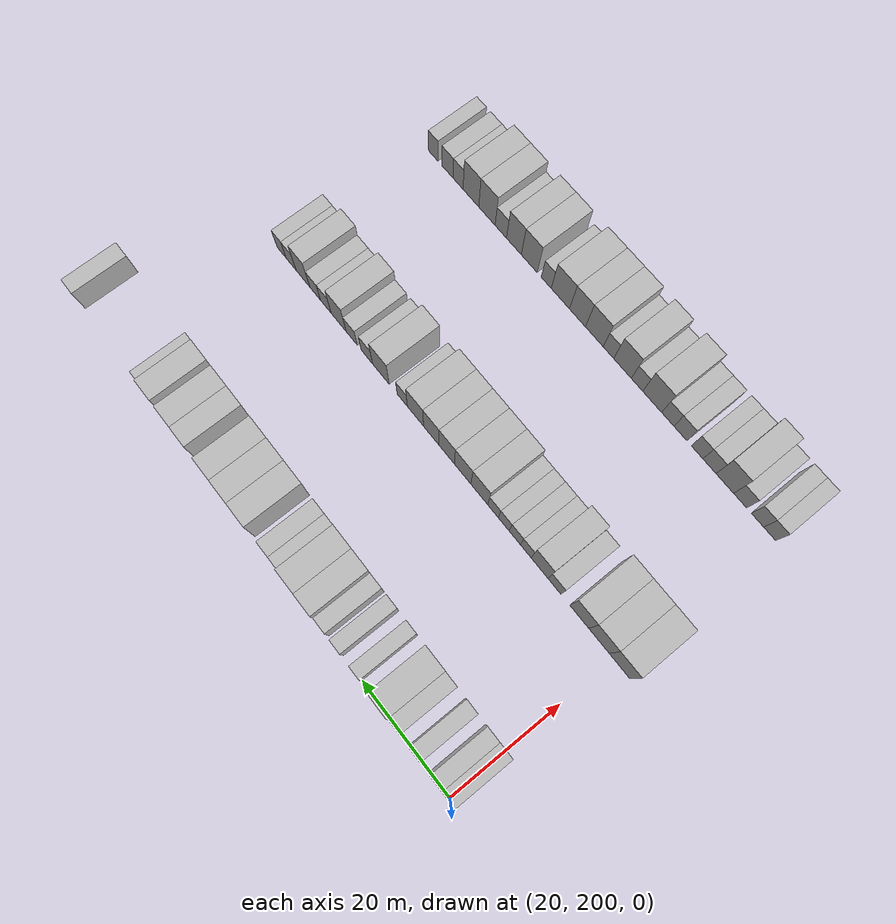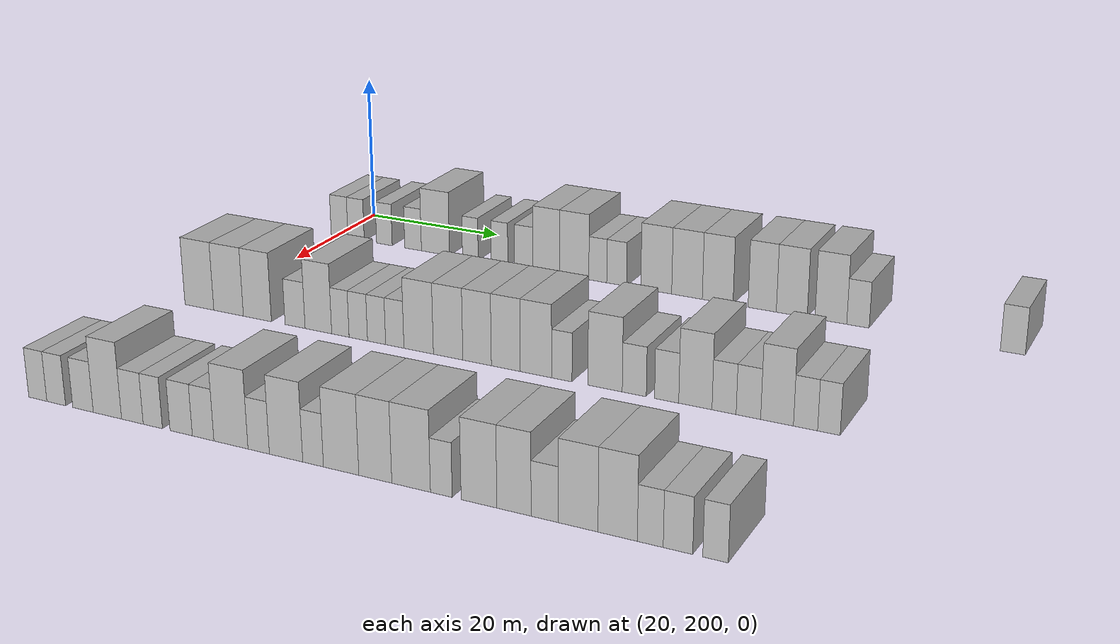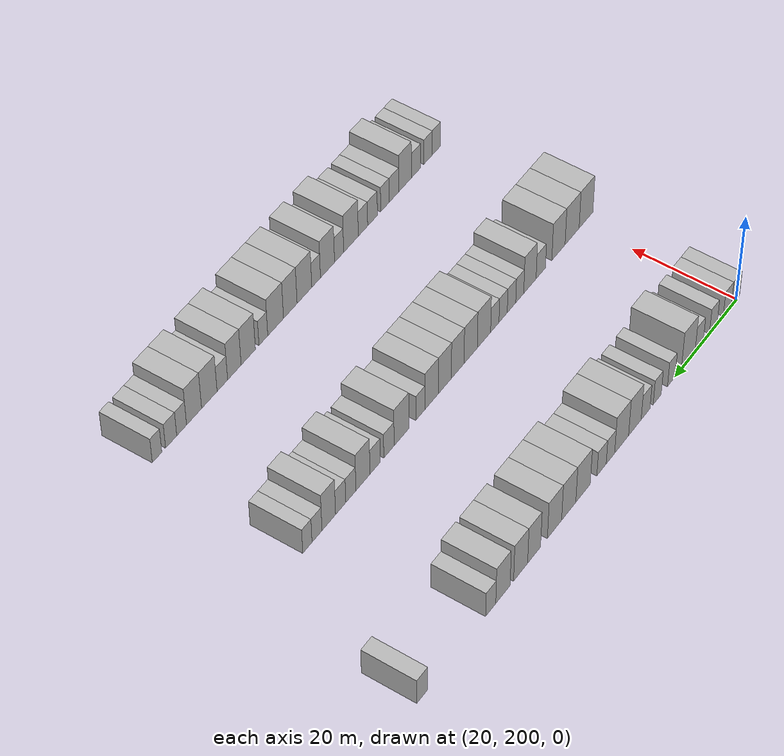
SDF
<sdf version="1.6">
 <world name="default">
  <model name="building_122">
   <static>1</static>
   <pose>25.0000 200.4142 0 0.000000 0.000000 0.000000</pose>
   <link name="link">
    <pose>0 0 3.00 0 0 0</pose>
    <collision name="collision"><geometry><box><size>10.0000 2.7504 6.0000</size></box></geometry></collision>
    <visual name="visual">
     <cast_shadows>0</cast_shadows>
     <geometry><box><size>10.0000 2.7504 6.0000</size></box></geometry>
     <material>
      <script>
       <uri>model://HANNAS_wall/materials/scripts</uri>
       <uri>model://HANNAS_wall/materials/textures</uri>
       <name>vrc/HANNAS_wall</name>
      </script>
     </material>
    </visual>
   </link>
  </model>
  <model name="building_123">
   <static>1</static>
   <pose>25.0000 203.1160 0 0.000000 0.000000 0.000000</pose>
   <link name="link">
    <pose>0 0 3.00 0 0 0</pose>
    <collision name="collision"><geometry><box><size>10.0000 2.6532 6.0000</size></box></geometry></collision>
    <visual name="visual">
     <cast_shadows>0</cast_shadows>
     <geometry><box><size>10.0000 2.6532 6.0000</size></box></geometry>
     <material>
      <script>
       <uri>model://HANNAS_wall/materials/scripts</uri>
       <uri>model://HANNAS_wall/materials/textures</uri>
       <name>vrc/HANNAS_wall</name>
      </script>
     </material>
    </visual>
   </link>
  </model>
  <model name="building_124">
   <static>1</static>
   <pose>25.0000 207.6968 0 0.000000 0.000000 0.000000</pose>
   <link name="link">
    <pose>0 0 3.00 0 0 0</pose>
    <collision name="collision"><geometry><box><size>10.0000 2.5084 6.0000</size></box></geometry></collision>
    <visual name="visual">
     <cast_shadows>0</cast_shadows>
     <geometry><box><size>10.0000 2.5084 6.0000</size></box></geometry>
     <material>
      <script>
       <uri>model://HANNAS_wall/materials/scripts</uri>
       <uri>model://HANNAS_wall/materials/textures</uri>
       <name>vrc/HANNAS_wall</name>
      </script>
     </material>
    </visual>
   </link>
  </model>
  <model name="building_125">
   <static>1</static>
   <pose>25.0000 212.2681 0 0.000000 0.000000 0.000000</pose>
   <link name="link">
    <pose>0 0 3.00 0 0 0</pose>
    <collision name="collision"><geometry><box><size>10.0000 2.6341 6.0000</size></box></geometry></collision>
    <visual name="visual">
     <cast_shadows>0</cast_shadows>
     <geometry><box><size>10.0000 2.6341 6.0000</size></box></geometry>
     <material>
      <script>
       <uri>model://HANNAS_wall/materials/scripts</uri>
       <uri>model://HANNAS_wall/materials/textures</uri>
       <name>vrc/HANNAS_wall</name>
      </script>
     </material>
    </visual>
   </link>
  </model>
  <model name="building_126">
   <static>1</static>
   <pose>25.0000 215.7819 0 0.000000 0.000000 0.000000</pose>
   <link name="link">
    <pose>0 0 4.50 0 0 0</pose>
    <collision name="collision"><geometry><box><size>10.0000 4.3936 9.0000</size></box></geometry></collision>
    <visual name="visual">
     <cast_shadows>0</cast_shadows>
     <geometry><box><size>10.0000 4.3936 9.0000</size></box></geometry>
     <material>
      <script>
       <uri>model://HANNAS_wall/materials/scripts</uri>
       <uri>model://HANNAS_wall/materials/textures</uri>
       <name>vrc/HANNAS_wall</name>
      </script>
     </material>
    </visual>
   </link>
  </model>
  <model name="building_127">
   <static>1</static>
   <pose>25.0000 221.1826 0 0.000000 0.000000 0.000000</pose>
   <link name="link">
    <pose>0 0 3.00 0 0 0</pose>
    <collision name="collision"><geometry><box><size>10.0000 2.4077 6.0000</size></box></geometry></collision>
    <visual name="visual">
     <cast_shadows>0</cast_shadows>
     <geometry><box><size>10.0000 2.4077 6.0000</size></box></geometry>
     <material>
      <script>
       <uri>model://HANNAS_wall/materials/scripts</uri>
       <uri>model://HANNAS_wall/materials/textures</uri>
       <name>vrc/HANNAS_wall</name>
      </script>
     </material>
    </visual>
   </link>
  </model>
  <model name="building_128">
   <static>1</static>
   <pose>25.0000 225.6379 0 0.000000 0.000000 0.000000</pose>
   <link name="link">
    <pose>0 0 3.00 0 0 0</pose>
    <collision name="collision"><geometry><box><size>10.0000 2.5028 6.0000</size></box></geometry></collision>
    <visual name="visual">
     <cast_shadows>0</cast_shadows>
     <geometry><box><size>10.0000 2.5028 6.0000</size></box></geometry>
     <material>
      <script>
       <uri>model://HANNAS_wall/materials/scripts</uri>
       <uri>model://HANNAS_wall/materials/textures</uri>
       <name>vrc/HANNAS_wall</name>
      </script>
     </material>
    </visual>
   </link>
  </model>
  <model name="building_129">
   <static>1</static>
   <pose>25.0000 229.2656 0 0.000000 0.000000 0.000000</pose>
   <link name="link">
    <pose>0 0 3.00 0 0 0</pose>
    <collision name="collision"><geometry><box><size>10.0000 2.7528 6.0000</size></box></geometry></collision>
    <visual name="visual">
     <cast_shadows>0</cast_shadows>
     <geometry><box><size>10.0000 2.7528 6.0000</size></box></geometry>
     <material>
      <script>
       <uri>model://HANNAS_wall/materials/scripts</uri>
       <uri>model://HANNAS_wall/materials/textures</uri>
       <name>vrc/HANNAS_wall</name>
      </script>
     </material>
    </visual>
   </link>
  </model>
  <model name="building_130">
   <static>1</static>
   <pose>25.0000 232.5916 0 0.000000 0.000000 0.000000</pose>
   <link name="link">
    <pose>0 0 4.50 0 0 0</pose>
    <collision name="collision"><geometry><box><size>10.0000 3.8992 9.0000</size></box></geometry></collision>
    <visual name="visual">
     <cast_shadows>0</cast_shadows>
     <geometry><box><size>10.0000 3.8992 9.0000</size></box></geometry>
     <material>
      <script>
       <uri>model://HANNAS_wall/materials/scripts</uri>
       <uri>model://HANNAS_wall/materials/textures</uri>
       <name>vrc/HANNAS_wall</name>
      </script>
     </material>
    </visual>
   </link>
  </model>
  <model name="building_131">
   <static>1</static>
   <pose>25.0000 236.6760 0 0.000000 0.000000 0.000000</pose>
   <link name="link">
    <pose>0 0 4.50 0 0 0</pose>
    <collision name="collision"><geometry><box><size>10.0000 4.2695 9.0000</size></box></geometry></collision>
    <visual name="visual">
     <cast_shadows>0</cast_shadows>
     <geometry><box><size>10.0000 4.2695 9.0000</size></box></geometry>
     <material>
      <script>
       <uri>model://HANNAS_wall/materials/scripts</uri>
       <uri>model://HANNAS_wall/materials/textures</uri>
       <name>vrc/HANNAS_wall</name>
      </script>
     </material>
    </visual>
   </link>
  </model>
  <model name="building_132">
   <static>1</static>
   <pose>25.0000 240.0927 0 0.000000 0.000000 0.000000</pose>
   <link name="link">
    <pose>0 0 3.00 0 0 0</pose>
    <collision name="collision"><geometry><box><size>10.0000 2.5639 6.0000</size></box></geometry></collision>
    <visual name="visual">
     <cast_shadows>0</cast_shadows>
     <geometry><box><size>10.0000 2.5639 6.0000</size></box></geometry>
     <material>
      <script>
       <uri>model://HANNAS_wall/materials/scripts</uri>
       <uri>model://HANNAS_wall/materials/textures</uri>
       <name>vrc/HANNAS_wall</name>
      </script>
     </material>
    </visual>
   </link>
  </model>
  <model name="building_133">
   <static>1</static>
   <pose>25.0000 242.7854 0 0.000000 0.000000 0.000000</pose>
   <link name="link">
    <pose>0 0 3.00 0 0 0</pose>
    <collision name="collision"><geometry><box><size>10.0000 2.8213 6.0000</size></box></geometry></collision>
    <visual name="visual">
     <cast_shadows>0</cast_shadows>
     <geometry><box><size>10.0000 2.8213 6.0000</size></box></geometry>
     <material>
      <script>
       <uri>model://HANNAS_wall/materials/scripts</uri>
       <uri>model://HANNAS_wall/materials/textures</uri>
       <name>vrc/HANNAS_wall</name>
      </script>
     </material>
    </visual>
   </link>
  </model>
  <model name="building_134">
   <static>1</static>
   <pose>25.0000 248.3501 0 0.000000 0.000000 0.000000</pose>
   <link name="link">
    <pose>0 0 4.50 0 0 0</pose>
    <collision name="collision"><geometry><box><size>10.0000 4.3082 9.0000</size></box></geometry></collision>
    <visual name="visual">
     <cast_shadows>0</cast_shadows>
     <geometry><box><size>10.0000 4.3082 9.0000</size></box></geometry>
     <material>
      <script>
       <uri>model://HANNAS_wall/materials/scripts</uri>
       <uri>model://HANNAS_wall/materials/textures</uri>
       <name>vrc/HANNAS_wall</name>
      </script>
     </material>
    </visual>
   </link>
  </model>
  <model name="building_135">
   <static>1</static>
   <pose>25.0000 252.6054 0 0.000000 0.000000 0.000000</pose>
   <link name="link">
    <pose>0 0 4.50 0 0 0</pose>
    <collision name="collision"><geometry><box><size>10.0000 4.2023 9.0000</size></box></geometry></collision>
    <visual name="visual">
     <cast_shadows>0</cast_shadows>
     <geometry><box><size>10.0000 4.2023 9.0000</size></box></geometry>
     <material>
      <script>
       <uri>model://HANNAS_wall/materials/scripts</uri>
       <uri>model://HANNAS_wall/materials/textures</uri>
       <name>vrc/HANNAS_wall</name>
      </script>
     </material>
    </visual>
   </link>
  </model>
  <model name="building_136">
   <static>1</static>
   <pose>25.0000 256.7842 0 0.000000 0.000000 0.000000</pose>
   <link name="link">
    <pose>0 0 4.50 0 0 0</pose>
    <collision name="collision"><geometry><box><size>10.0000 4.1553 9.0000</size></box></geometry></collision>
    <visual name="visual">
     <cast_shadows>0</cast_shadows>
     <geometry><box><size>10.0000 4.1553 9.0000</size></box></geometry>
     <material>
      <script>
       <uri>model://HANNAS_wall/materials/scripts</uri>
       <uri>model://HANNAS_wall/materials/textures</uri>
       <name>vrc/HANNAS_wall</name>
      </script>
     </material>
    </visual>
   </link>
  </model>
  <model name="building_137">
   <static>1</static>
   <pose>25.0000 262.7335 0 0.000000 0.000000 0.000000</pose>
   <link name="link">
    <pose>0 0 4.50 0 0 0</pose>
    <collision name="collision"><geometry><box><size>10.0000 3.7433 9.0000</size></box></geometry></collision>
    <visual name="visual">
     <cast_shadows>0</cast_shadows>
     <geometry><box><size>10.0000 3.7433 9.0000</size></box></geometry>
     <material>
      <script>
       <uri>model://HANNAS_wall/materials/scripts</uri>
       <uri>model://HANNAS_wall/materials/textures</uri>
       <name>vrc/HANNAS_wall</name>
      </script>
     </material>
    </visual>
   </link>
  </model>
  <model name="building_138">
   <static>1</static>
   <pose>25.0000 266.6186 0 0.000000 0.000000 0.000000</pose>
   <link name="link">
    <pose>0 0 4.50 0 0 0</pose>
    <collision name="collision"><geometry><box><size>10.0000 4.0269 9.0000</size></box></geometry></collision>
    <visual name="visual">
     <cast_shadows>0</cast_shadows>
     <geometry><box><size>10.0000 4.0269 9.0000</size></box></geometry>
     <material>
      <script>
       <uri>model://HANNAS_wall/materials/scripts</uri>
       <uri>model://HANNAS_wall/materials/textures</uri>
       <name>vrc/HANNAS_wall</name>
      </script>
     </material>
    </visual>
   </link>
  </model>
  <model name="building_139">
   <static>1</static>
   <pose>25.0000 271.6617 0 0.000000 0.000000 0.000000</pose>
   <link name="link">
    <pose>0 0 4.50 0 0 0</pose>
    <collision name="collision"><geometry><box><size>10.0000 4.0594 9.0000</size></box></geometry></collision>
    <visual name="visual">
     <cast_shadows>0</cast_shadows>
     <geometry><box><size>10.0000 4.0594 9.0000</size></box></geometry>
     <material>
      <script>
       <uri>model://HANNAS_wall/materials/scripts</uri>
       <uri>model://HANNAS_wall/materials/textures</uri>
       <name>vrc/HANNAS_wall</name>
      </script>
     </material>
    </visual>
   </link>
  </model>
  <model name="building_140">
   <static>1</static>
   <pose>25.0000 275.1114 0 0.000000 0.000000 0.000000</pose>
   <link name="link">
    <pose>0 0 3.00 0 0 0</pose>
    <collision name="collision"><geometry><box><size>10.0000 2.8400 6.0000</size></box></geometry></collision>
    <visual name="visual">
     <cast_shadows>0</cast_shadows>
     <geometry><box><size>10.0000 2.8400 6.0000</size></box></geometry>
     <material>
      <script>
       <uri>model://HANNAS_wall/materials/scripts</uri>
       <uri>model://HANNAS_wall/materials/textures</uri>
       <name>vrc/HANNAS_wall</name>
      </script>
     </material>
    </visual>
   </link>
  </model>
  <model name="building_141">
   <static>1</static>
   <pose>25.0000 293.9502 0 0.000000 0.000000 0.000000</pose>
   <link name="link">
    <pose>0 0 3.00 0 0 0</pose>
    <collision name="collision"><geometry><box><size>10.0000 2.9459 6.0000</size></box></geometry></collision>
    <visual name="visual">
     <cast_shadows>0</cast_shadows>
     <geometry><box><size>10.0000 2.9459 6.0000</size></box></geometry>
     <material>
      <script>
       <uri>model://HANNAS_wall/materials/scripts</uri>
       <uri>model://HANNAS_wall/materials/textures</uri>
       <name>vrc/HANNAS_wall</name>
      </script>
     </material>
    </visual>
   </link>
  </model>
  <model name="building_243">
   <static>1</static>
   <pose>55.0000 198.7515 0 0.000000 0.000000 0.000000</pose>
   <link name="link">
    <pose>0 0 4.50 0 0 0</pose>
    <collision name="collision"><geometry><box><size>10.0000 4.4280 9.0000</size></box></geometry></collision>
    <visual name="visual">
     <cast_shadows>0</cast_shadows>
     <geometry><box><size>10.0000 4.4280 9.0000</size></box></geometry>
     <material>
      <script>
       <uri>model://HANNAS_wall/materials/scripts</uri>
       <uri>model://HANNAS_wall/materials/textures</uri>
       <name>vrc/HANNAS_wall</name>
      </script>
     </material>
    </visual>
   </link>
  </model>
  <model name="building_244">
   <static>1</static>
   <pose>55.0000 203.2038 0 0.000000 0.000000 0.000000</pose>
   <link name="link">
    <pose>0 0 4.50 0 0 0</pose>
    <collision name="collision"><geometry><box><size>10.0000 4.4765 9.0000</size></box></geometry></collision>
    <visual name="visual">
     <cast_shadows>0</cast_shadows>
     <geometry><box><size>10.0000 4.4765 9.0000</size></box></geometry>
     <material>
      <script>
       <uri>model://HANNAS_wall/materials/scripts</uri>
       <uri>model://HANNAS_wall/materials/textures</uri>
       <name>vrc/HANNAS_wall</name>
      </script>
     </material>
    </visual>
   </link>
  </model>
  <model name="building_245">
   <static>1</static>
   <pose>55.0000 207.5341 0 0.000000 0.000000 0.000000</pose>
   <link name="link">
    <pose>0 0 4.50 0 0 0</pose>
    <collision name="collision"><geometry><box><size>10.0000 4.1841 9.0000</size></box></geometry></collision>
    <visual name="visual">
     <cast_shadows>0</cast_shadows>
     <geometry><box><size>10.0000 4.1841 9.0000</size></box></geometry>
     <material>
      <script>
       <uri>model://HANNAS_wall/materials/scripts</uri>
       <uri>model://HANNAS_wall/materials/textures</uri>
       <name>vrc/HANNAS_wall</name>
      </script>
     </material>
    </visual>
   </link>
  </model>
  <model name="building_246">
   <static>1</static>
   <pose>55.0000 213.0889 0 0.000000 0.000000 0.000000</pose>
   <link name="link">
    <pose>0 0 3.00 0 0 0</pose>
    <collision name="collision"><geometry><box><size>10.0000 2.9253 6.0000</size></box></geometry></collision>
    <visual name="visual">
     <cast_shadows>0</cast_shadows>
     <geometry><box><size>10.0000 2.9253 6.0000</size></box></geometry>
     <material>
      <script>
       <uri>model://HANNAS_wall/materials/scripts</uri>
       <uri>model://HANNAS_wall/materials/textures</uri>
       <name>vrc/HANNAS_wall</name>
      </script>
     </material>
    </visual>
   </link>
  </model>
  <model name="building_247">
   <static>1</static>
   <pose>55.0000 216.4675 0 0.000000 0.000000 0.000000</pose>
   <link name="link">
    <pose>0 0 4.50 0 0 0</pose>
    <collision name="collision"><geometry><box><size>10.0000 3.8318 9.0000</size></box></geometry></collision>
    <visual name="visual">
     <cast_shadows>0</cast_shadows>
     <geometry><box><size>10.0000 3.8318 9.0000</size></box></geometry>
     <material>
      <script>
       <uri>model://HANNAS_wall/materials/scripts</uri>
       <uri>model://HANNAS_wall/materials/textures</uri>
       <name>vrc/HANNAS_wall</name>
      </script>
     </material>
    </visual>
   </link>
  </model>
  <model name="building_248">
   <static>1</static>
   <pose>55.0000 219.6196 0 0.000000 0.000000 0.000000</pose>
   <link name="link">
    <pose>0 0 3.00 0 0 0</pose>
    <collision name="collision"><geometry><box><size>10.0000 2.4725 6.0000</size></box></geometry></collision>
    <visual name="visual">
     <cast_shadows>0</cast_shadows>
     <geometry><box><size>10.0000 2.4725 6.0000</size></box></geometry>
     <material>
      <script>
       <uri>model://HANNAS_wall/materials/scripts</uri>
       <uri>model://HANNAS_wall/materials/textures</uri>
       <name>vrc/HANNAS_wall</name>
      </script>
     </material>
    </visual>
   </link>
  </model>
  <model name="building_249">
   <static>1</static>
   <pose>55.0000 222.1556 0 0.000000 0.000000 0.000000</pose>
   <link name="link">
    <pose>0 0 3.00 0 0 0</pose>
    <collision name="collision"><geometry><box><size>10.0000 2.5994 6.0000</size></box></geometry></collision>
    <visual name="visual">
     <cast_shadows>0</cast_shadows>
     <geometry><box><size>10.0000 2.5994 6.0000</size></box></geometry>
     <material>
      <script>
       <uri>model://HANNAS_wall/materials/scripts</uri>
       <uri>model://HANNAS_wall/materials/textures</uri>
       <name>vrc/HANNAS_wall</name>
      </script>
     </material>
    </visual>
   </link>
  </model>
  <model name="building_250">
   <static>1</static>
   <pose>55.0000 224.7178 0 0.000000 0.000000 0.000000</pose>
   <link name="link">
    <pose>0 0 3.00 0 0 0</pose>
    <collision name="collision"><geometry><box><size>10.0000 2.5250 6.0000</size></box></geometry></collision>
    <visual name="visual">
     <cast_shadows>0</cast_shadows>
     <geometry><box><size>10.0000 2.5250 6.0000</size></box></geometry>
     <material>
      <script>
       <uri>model://HANNAS_wall/materials/scripts</uri>
       <uri>model://HANNAS_wall/materials/textures</uri>
       <name>vrc/HANNAS_wall</name>
      </script>
     </material>
    </visual>
   </link>
  </model>
  <model name="building_251">
   <static>1</static>
   <pose>55.0000 227.2440 0 0.000000 0.000000 0.000000</pose>
   <link name="link">
    <pose>0 0 3.00 0 0 0</pose>
    <collision name="collision"><geometry><box><size>10.0000 2.5272 6.0000</size></box></geometry></collision>
    <visual name="visual">
     <cast_shadows>0</cast_shadows>
     <geometry><box><size>10.0000 2.5272 6.0000</size></box></geometry>
     <material>
      <script>
       <uri>model://HANNAS_wall/materials/scripts</uri>
       <uri>model://HANNAS_wall/materials/textures</uri>
       <name>vrc/HANNAS_wall</name>
      </script>
     </material>
    </visual>
   </link>
  </model>
  <model name="building_252">
   <static>1</static>
   <pose>55.0000 230.5145 0 0.000000 0.000000 0.000000</pose>
   <link name="link">
    <pose>0 0 4.50 0 0 0</pose>
    <collision name="collision"><geometry><box><size>10.0000 4.0139 9.0000</size></box></geometry></collision>
    <visual name="visual">
     <cast_shadows>0</cast_shadows>
     <geometry><box><size>10.0000 4.0139 9.0000</size></box></geometry>
     <material>
      <script>
       <uri>model://HANNAS_wall/materials/scripts</uri>
       <uri>model://HANNAS_wall/materials/textures</uri>
       <name>vrc/HANNAS_wall</name>
      </script>
     </material>
    </visual>
   </link>
  </model>
  <model name="building_253">
   <static>1</static>
   <pose>55.0000 234.5009 0 0.000000 0.000000 0.000000</pose>
   <link name="link">
    <pose>0 0 4.50 0 0 0</pose>
    <collision name="collision"><geometry><box><size>10.0000 3.9589 9.0000</size></box></geometry></collision>
    <visual name="visual">
     <cast_shadows>0</cast_shadows>
     <geometry><box><size>10.0000 3.9589 9.0000</size></box></geometry>
     <material>
      <script>
       <uri>model://HANNAS_wall/materials/scripts</uri>
       <uri>model://HANNAS_wall/materials/textures</uri>
       <name>vrc/HANNAS_wall</name>
      </script>
     </material>
    </visual>
   </link>
  </model>
  <model name="building_254">
   <static>1</static>
   <pose>55.0000 238.3626 0 0.000000 0.000000 0.000000</pose>
   <link name="link">
    <pose>0 0 4.50 0 0 0</pose>
    <collision name="collision"><geometry><box><size>10.0000 3.7644 9.0000</size></box></geometry></collision>
    <visual name="visual">
     <cast_shadows>0</cast_shadows>
     <geometry><box><size>10.0000 3.7644 9.0000</size></box></geometry>
     <material>
      <script>
       <uri>model://HANNAS_wall/materials/scripts</uri>
       <uri>model://HANNAS_wall/materials/textures</uri>
       <name>vrc/HANNAS_wall</name>
      </script>
     </material>
    </visual>
   </link>
  </model>
  <model name="building_255">
   <static>1</static>
   <pose>55.0000 242.1296 0 0.000000 0.000000 0.000000</pose>
   <link name="link">
    <pose>0 0 4.50 0 0 0</pose>
    <collision name="collision"><geometry><box><size>10.0000 3.7696 9.0000</size></box></geometry></collision>
    <visual name="visual">
     <cast_shadows>0</cast_shadows>
     <geometry><box><size>10.0000 3.7696 9.0000</size></box></geometry>
     <material>
      <script>
       <uri>model://HANNAS_wall/materials/scripts</uri>
       <uri>model://HANNAS_wall/materials/textures</uri>
       <name>vrc/HANNAS_wall</name>
      </script>
     </material>
    </visual>
   </link>
  </model>
  <model name="building_256">
   <static>1</static>
   <pose>55.0000 246.0163 0 0.000000 0.000000 0.000000</pose>
   <link name="link">
    <pose>0 0 4.50 0 0 0</pose>
    <collision name="collision"><geometry><box><size>10.0000 4.0038 9.0000</size></box></geometry></collision>
    <visual name="visual">
     <cast_shadows>0</cast_shadows>
     <geometry><box><size>10.0000 4.0038 9.0000</size></box></geometry>
     <material>
      <script>
       <uri>model://HANNAS_wall/materials/scripts</uri>
       <uri>model://HANNAS_wall/materials/textures</uri>
       <name>vrc/HANNAS_wall</name>
      </script>
     </material>
    </visual>
   </link>
  </model>
  <model name="building_257">
   <static>1</static>
   <pose>55.0000 249.3091 0 0.000000 0.000000 0.000000</pose>
   <link name="link">
    <pose>0 0 3.00 0 0 0</pose>
    <collision name="collision"><geometry><box><size>10.0000 2.5819 6.0000</size></box></geometry></collision>
    <visual name="visual">
     <cast_shadows>0</cast_shadows>
     <geometry><box><size>10.0000 2.5819 6.0000</size></box></geometry>
     <material>
      <script>
       <uri>model://HANNAS_wall/materials/scripts</uri>
       <uri>model://HANNAS_wall/materials/textures</uri>
       <name>vrc/HANNAS_wall</name>
      </script>
     </material>
    </visual>
   </link>
  </model>
  <model name="building_258">
   <static>1</static>
   <pose>55.0000 254.7187 0 0.000000 0.000000 0.000000</pose>
   <link name="link">
    <pose>0 0 4.50 0 0 0</pose>
    <collision name="collision"><geometry><box><size>10.0000 4.2373 9.0000</size></box></geometry></collision>
    <visual name="visual">
     <cast_shadows>0</cast_shadows>
     <geometry><box><size>10.0000 4.2373 9.0000</size></box></geometry>
     <material>
      <script>
       <uri>model://HANNAS_wall/materials/scripts</uri>
       <uri>model://HANNAS_wall/materials/textures</uri>
       <name>vrc/HANNAS_wall</name>
      </script>
     </material>
    </visual>
   </link>
  </model>
  <model name="building_259">
   <static>1</static>
   <pose>55.0000 258.3028 0 0.000000 0.000000 0.000000</pose>
   <link name="link">
    <pose>0 0 3.00 0 0 0</pose>
    <collision name="collision"><geometry><box><size>10.0000 2.9310 6.0000</size></box></geometry></collision>
    <visual name="visual">
     <cast_shadows>0</cast_shadows>
     <geometry><box><size>10.0000 2.9310 6.0000</size></box></geometry>
     <material>
      <script>
       <uri>model://HANNAS_wall/materials/scripts</uri>
       <uri>model://HANNAS_wall/materials/textures</uri>
       <name>vrc/HANNAS_wall</name>
      </script>
     </material>
    </visual>
   </link>
  </model>
  <model name="building_260">
   <static>1</static>
   <pose>55.0000 262.2140 0 0.000000 0.000000 0.000000</pose>
   <link name="link">
    <pose>0 0 3.00 0 0 0</pose>
    <collision name="collision"><geometry><box><size>10.0000 2.8914 6.0000</size></box></geometry></collision>
    <visual name="visual">
     <cast_shadows>0</cast_shadows>
     <geometry><box><size>10.0000 2.8914 6.0000</size></box></geometry>
     <material>
      <script>
       <uri>model://HANNAS_wall/materials/scripts</uri>
       <uri>model://HANNAS_wall/materials/textures</uri>
       <name>vrc/HANNAS_wall</name>
      </script>
     </material>
    </visual>
   </link>
  </model>
  <model name="building_261">
   <static>1</static>
   <pose>55.0000 265.6267 0 0.000000 0.000000 0.000000</pose>
   <link name="link">
    <pose>0 0 4.50 0 0 0</pose>
    <collision name="collision"><geometry><box><size>10.0000 3.9339 9.0000</size></box></geometry></collision>
    <visual name="visual">
     <cast_shadows>0</cast_shadows>
     <geometry><box><size>10.0000 3.9339 9.0000</size></box></geometry>
     <material>
      <script>
       <uri>model://HANNAS_wall/materials/scripts</uri>
       <uri>model://HANNAS_wall/materials/textures</uri>
       <name>vrc/HANNAS_wall</name>
      </script>
     </material>
    </visual>
   </link>
  </model>
  <model name="building_262">
   <static>1</static>
   <pose>55.0000 268.9992 0 0.000000 0.000000 0.000000</pose>
   <link name="link">
    <pose>0 0 3.00 0 0 0</pose>
    <collision name="collision"><geometry><box><size>10.0000 2.8111 6.0000</size></box></geometry></collision>
    <visual name="visual">
     <cast_shadows>0</cast_shadows>
     <geometry><box><size>10.0000 2.8111 6.0000</size></box></geometry>
     <material>
      <script>
       <uri>model://HANNAS_wall/materials/scripts</uri>
       <uri>model://HANNAS_wall/materials/textures</uri>
       <name>vrc/HANNAS_wall</name>
      </script>
     </material>
    </visual>
   </link>
  </model>
  <model name="building_263">
   <static>1</static>
   <pose>55.0000 271.8158 0 0.000000 0.000000 0.000000</pose>
   <link name="link">
    <pose>0 0 3.00 0 0 0</pose>
    <collision name="collision"><geometry><box><size>10.0000 2.8222 6.0000</size></box></geometry></collision>
    <visual name="visual">
     <cast_shadows>0</cast_shadows>
     <geometry><box><size>10.0000 2.8222 6.0000</size></box></geometry>
     <material>
      <script>
       <uri>model://HANNAS_wall/materials/scripts</uri>
       <uri>model://HANNAS_wall/materials/textures</uri>
       <name>vrc/HANNAS_wall</name>
      </script>
     </material>
    </visual>
   </link>
  </model>
  <model name="building_264">
   <static>1</static>
   <pose>55.0000 275.0876 0 0.000000 0.000000 0.000000</pose>
   <link name="link">
    <pose>0 0 4.50 0 0 0</pose>
    <collision name="collision"><geometry><box><size>10.0000 3.7214 9.0000</size></box></geometry></collision>
    <visual name="visual">
     <cast_shadows>0</cast_shadows>
     <geometry><box><size>10.0000 3.7214 9.0000</size></box></geometry>
     <material>
      <script>
       <uri>model://HANNAS_wall/materials/scripts</uri>
       <uri>model://HANNAS_wall/materials/textures</uri>
       <name>vrc/HANNAS_wall</name>
      </script>
     </material>
    </visual>
   </link>
  </model>
  <model name="building_265">
   <static>1</static>
   <pose>55.0000 278.3015 0 0.000000 0.000000 0.000000</pose>
   <link name="link">
    <pose>0 0 3.00 0 0 0</pose>
    <collision name="collision"><geometry><box><size>10.0000 2.7063 6.0000</size></box></geometry></collision>
    <visual name="visual">
     <cast_shadows>0</cast_shadows>
     <geometry><box><size>10.0000 2.7063 6.0000</size></box></geometry>
     <material>
      <script>
       <uri>model://HANNAS_wall/materials/scripts</uri>
       <uri>model://HANNAS_wall/materials/textures</uri>
       <name>vrc/HANNAS_wall</name>
      </script>
     </material>
    </visual>
   </link>
  </model>
  <model name="building_266">
   <static>1</static>
   <pose>55.0000 280.9047 0 0.000000 0.000000 0.000000</pose>
   <link name="link">
    <pose>0 0 3.00 0 0 0</pose>
    <collision name="collision"><geometry><box><size>10.0000 2.5002 6.0000</size></box></geometry></collision>
    <visual name="visual">
     <cast_shadows>0</cast_shadows>
     <geometry><box><size>10.0000 2.5002 6.0000</size></box></geometry>
     <material>
      <script>
       <uri>model://HANNAS_wall/materials/scripts</uri>
       <uri>model://HANNAS_wall/materials/textures</uri>
       <name>vrc/HANNAS_wall</name>
      </script>
     </material>
    </visual>
   </link>
  </model>
  <model name="building_384">
   <static>1</static>
   <pose>85.0000 199.1192 0 0.000000 0.000000 0.000000</pose>
   <link name="link">
    <pose>0 0 3.00 0 0 0</pose>
    <collision name="collision"><geometry><box><size>10.0000 2.5743 6.0000</size></box></geometry></collision>
    <visual name="visual">
     <cast_shadows>0</cast_shadows>
     <geometry><box><size>10.0000 2.5743 6.0000</size></box></geometry>
     <material>
      <script>
       <uri>model://HANNAS_wall/materials/scripts</uri>
       <uri>model://HANNAS_wall/materials/textures</uri>
       <name>vrc/HANNAS_wall</name>
      </script>
     </material>
    </visual>
   </link>
  </model>
  <model name="building_385">
   <static>1</static>
   <pose>85.0000 201.7291 0 0.000000 0.000000 0.000000</pose>
   <link name="link">
    <pose>0 0 3.00 0 0 0</pose>
    <collision name="collision"><geometry><box><size>10.0000 2.6455 6.0000</size></box></geometry></collision>
    <visual name="visual">
     <cast_shadows>0</cast_shadows>
     <geometry><box><size>10.0000 2.6455 6.0000</size></box></geometry>
     <material>
      <script>
       <uri>model://HANNAS_wall/materials/scripts</uri>
       <uri>model://HANNAS_wall/materials/textures</uri>
       <name>vrc/HANNAS_wall</name>
      </script>
     </material>
    </visual>
   </link>
  </model>
  <model name="building_386">
   <static>1</static>
   <pose>85.0000 205.4748 0 0.000000 0.000000 0.000000</pose>
   <link name="link">
    <pose>0 0 3.00 0 0 0</pose>
    <collision name="collision"><geometry><box><size>10.0000 2.8460 6.0000</size></box></geometry></collision>
    <visual name="visual">
     <cast_shadows>0</cast_shadows>
     <geometry><box><size>10.0000 2.8460 6.0000</size></box></geometry>
     <material>
      <script>
       <uri>model://HANNAS_wall/materials/scripts</uri>
       <uri>model://HANNAS_wall/materials/textures</uri>
       <name>vrc/HANNAS_wall</name>
      </script>
     </material>
    </visual>
   </link>
  </model>
  <model name="building_387">
   <static>1</static>
   <pose>85.0000 208.8363 0 0.000000 0.000000 0.000000</pose>
   <link name="link">
    <pose>0 0 4.50 0 0 0</pose>
    <collision name="collision"><geometry><box><size>10.0000 3.8772 9.0000</size></box></geometry></collision>
    <visual name="visual">
     <cast_shadows>0</cast_shadows>
     <geometry><box><size>10.0000 3.8772 9.0000</size></box></geometry>
     <material>
      <script>
       <uri>model://HANNAS_wall/materials/scripts</uri>
       <uri>model://HANNAS_wall/materials/textures</uri>
       <name>vrc/HANNAS_wall</name>
      </script>
     </material>
    </visual>
   </link>
  </model>
  <model name="building_388">
   <static>1</static>
   <pose>85.0000 212.2338 0 0.000000 0.000000 0.000000</pose>
   <link name="link">
    <pose>0 0 3.00 0 0 0</pose>
    <collision name="collision"><geometry><box><size>10.0000 2.9178 6.0000</size></box></geometry></collision>
    <visual name="visual">
     <cast_shadows>0</cast_shadows>
     <geometry><box><size>10.0000 2.9178 6.0000</size></box></geometry>
     <material>
      <script>
       <uri>model://HANNAS_wall/materials/scripts</uri>
       <uri>model://HANNAS_wall/materials/textures</uri>
       <name>vrc/HANNAS_wall</name>
      </script>
     </material>
    </visual>
   </link>
  </model>
  <model name="building_389">
   <static>1</static>
   <pose>85.0000 214.9746 0 0.000000 0.000000 0.000000</pose>
   <link name="link">
    <pose>0 0 3.00 0 0 0</pose>
    <collision name="collision"><geometry><box><size>10.0000 2.5638 6.0000</size></box></geometry></collision>
    <visual name="visual">
     <cast_shadows>0</cast_shadows>
     <geometry><box><size>10.0000 2.5638 6.0000</size></box></geometry>
     <material>
      <script>
       <uri>model://HANNAS_wall/materials/scripts</uri>
       <uri>model://HANNAS_wall/materials/textures</uri>
       <name>vrc/HANNAS_wall</name>
      </script>
     </material>
    </visual>
   </link>
  </model>
  <model name="building_390">
   <static>1</static>
   <pose>85.0000 218.7222 0 0.000000 0.000000 0.000000</pose>
   <link name="link">
    <pose>0 0 3.00 0 0 0</pose>
    <collision name="collision"><geometry><box><size>10.0000 2.9313 6.0000</size></box></geometry></collision>
    <visual name="visual">
     <cast_shadows>0</cast_shadows>
     <geometry><box><size>10.0000 2.9313 6.0000</size></box></geometry>
     <material>
      <script>
       <uri>model://HANNAS_wall/materials/scripts</uri>
       <uri>model://HANNAS_wall/materials/textures</uri>
       <name>vrc/HANNAS_wall</name>
      </script>
     </material>
    </visual>
   </link>
  </model>
  <model name="building_391">
   <static>1</static>
   <pose>85.0000 221.5841 0 0.000000 0.000000 0.000000</pose>
   <link name="link">
    <pose>0 0 3.00 0 0 0</pose>
    <collision name="collision"><geometry><box><size>10.0000 2.7924 6.0000</size></box></geometry></collision>
    <visual name="visual">
     <cast_shadows>0</cast_shadows>
     <geometry><box><size>10.0000 2.7924 6.0000</size></box></geometry>
     <material>
      <script>
       <uri>model://HANNAS_wall/materials/scripts</uri>
       <uri>model://HANNAS_wall/materials/textures</uri>
       <name>vrc/HANNAS_wall</name>
      </script>
     </material>
    </visual>
   </link>
  </model>
  <model name="building_392">
   <static>1</static>
   <pose>85.0000 225.1539 0 0.000000 0.000000 0.000000</pose>
   <link name="link">
    <pose>0 0 4.50 0 0 0</pose>
    <collision name="collision"><geometry><box><size>10.0000 4.3474 9.0000</size></box></geometry></collision>
    <visual name="visual">
     <cast_shadows>0</cast_shadows>
     <geometry><box><size>10.0000 4.3474 9.0000</size></box></geometry>
     <material>
      <script>
       <uri>model://HANNAS_wall/materials/scripts</uri>
       <uri>model://HANNAS_wall/materials/textures</uri>
       <name>vrc/HANNAS_wall</name>
      </script>
     </material>
    </visual>
   </link>
  </model>
  <model name="building_393">
   <static>1</static>
   <pose>85.0000 228.6715 0 0.000000 0.000000 0.000000</pose>
   <link name="link">
    <pose>0 0 3.00 0 0 0</pose>
    <collision name="collision"><geometry><box><size>10.0000 2.6877 6.0000</size></box></geometry></collision>
    <visual name="visual">
     <cast_shadows>0</cast_shadows>
     <geometry><box><size>10.0000 2.6877 6.0000</size></box></geometry>
     <material>
      <script>
       <uri>model://HANNAS_wall/materials/scripts</uri>
       <uri>model://HANNAS_wall/materials/textures</uri>
       <name>vrc/HANNAS_wall</name>
      </script>
     </material>
    </visual>
   </link>
  </model>
  <model name="building_394">
   <static>1</static>
   <pose>85.0000 232.0787 0 0.000000 0.000000 0.000000</pose>
   <link name="link">
    <pose>0 0 4.50 0 0 0</pose>
    <collision name="collision"><geometry><box><size>10.0000 4.1267 9.0000</size></box></geometry></collision>
    <visual name="visual">
     <cast_shadows>0</cast_shadows>
     <geometry><box><size>10.0000 4.1267 9.0000</size></box></geometry>
     <material>
      <script>
       <uri>model://HANNAS_wall/materials/scripts</uri>
       <uri>model://HANNAS_wall/materials/textures</uri>
       <name>vrc/HANNAS_wall</name>
      </script>
     </material>
    </visual>
   </link>
  </model>
  <model name="building_395">
   <static>1</static>
   <pose>85.0000 235.4022 0 0.000000 0.000000 0.000000</pose>
   <link name="link">
    <pose>0 0 3.00 0 0 0</pose>
    <collision name="collision"><geometry><box><size>10.0000 2.5202 6.0000</size></box></geometry></collision>
    <visual name="visual">
     <cast_shadows>0</cast_shadows>
     <geometry><box><size>10.0000 2.5202 6.0000</size></box></geometry>
     <material>
      <script>
       <uri>model://HANNAS_wall/materials/scripts</uri>
       <uri>model://HANNAS_wall/materials/textures</uri>
       <name>vrc/HANNAS_wall</name>
      </script>
     </material>
    </visual>
   </link>
  </model>
  <model name="building_396">
   <static>1</static>
   <pose>85.0000 238.7833 0 0.000000 0.000000 0.000000</pose>
   <link name="link">
    <pose>0 0 4.50 0 0 0</pose>
    <collision name="collision"><geometry><box><size>10.0000 4.2420 9.0000</size></box></geometry></collision>
    <visual name="visual">
     <cast_shadows>0</cast_shadows>
     <geometry><box><size>10.0000 4.2420 9.0000</size></box></geometry>
     <material>
      <script>
       <uri>model://HANNAS_wall/materials/scripts</uri>
       <uri>model://HANNAS_wall/materials/textures</uri>
       <name>vrc/HANNAS_wall</name>
      </script>
     </material>
    </visual>
   </link>
  </model>
  <model name="building_397">
   <static>1</static>
   <pose>85.0000 242.8465 0 0.000000 0.000000 0.000000</pose>
   <link name="link">
    <pose>0 0 4.50 0 0 0</pose>
    <collision name="collision"><geometry><box><size>10.0000 3.8843 9.0000</size></box></geometry></collision>
    <visual name="visual">
     <cast_shadows>0</cast_shadows>
     <geometry><box><size>10.0000 3.8843 9.0000</size></box></geometry>
     <material>
      <script>
       <uri>model://HANNAS_wall/materials/scripts</uri>
       <uri>model://HANNAS_wall/materials/textures</uri>
       <name>vrc/HANNAS_wall</name>
      </script>
     </material>
    </visual>
   </link>
  </model>
  <model name="building_398">
   <static>1</static>
   <pose>85.0000 247.0202 0 0.000000 0.000000 0.000000</pose>
   <link name="link">
    <pose>0 0 4.50 0 0 0</pose>
    <collision name="collision"><geometry><box><size>10.0000 4.4632 9.0000</size></box></geometry></collision>
    <visual name="visual">
     <cast_shadows>0</cast_shadows>
     <geometry><box><size>10.0000 4.4632 9.0000</size></box></geometry>
     <material>
      <script>
       <uri>model://HANNAS_wall/materials/scripts</uri>
       <uri>model://HANNAS_wall/materials/textures</uri>
       <name>vrc/HANNAS_wall</name>
      </script>
     </material>
    </visual>
   </link>
  </model>
  <model name="building_399">
   <static>1</static>
   <pose>85.0000 250.4878 0 0.000000 0.000000 0.000000</pose>
   <link name="link">
    <pose>0 0 3.00 0 0 0</pose>
    <collision name="collision"><geometry><box><size>10.0000 2.4718 6.0000</size></box></geometry></collision>
    <visual name="visual">
     <cast_shadows>0</cast_shadows>
     <geometry><box><size>10.0000 2.4718 6.0000</size></box></geometry>
     <material>
      <script>
       <uri>model://HANNAS_wall/materials/scripts</uri>
       <uri>model://HANNAS_wall/materials/textures</uri>
       <name>vrc/HANNAS_wall</name>
      </script>
     </material>
    </visual>
   </link>
  </model>
  <model name="building_400">
   <static>1</static>
   <pose>85.0000 254.7159 0 0.000000 0.000000 0.000000</pose>
   <link name="link">
    <pose>0 0 4.50 0 0 0</pose>
    <collision name="collision"><geometry><box><size>10.0000 3.9844 9.0000</size></box></geometry></collision>
    <visual name="visual">
     <cast_shadows>0</cast_shadows>
     <geometry><box><size>10.0000 3.9844 9.0000</size></box></geometry>
     <material>
      <script>
       <uri>model://HANNAS_wall/materials/scripts</uri>
       <uri>model://HANNAS_wall/materials/textures</uri>
       <name>vrc/HANNAS_wall</name>
      </script>
     </material>
    </visual>
   </link>
  </model>
  <model name="building_401">
   <static>1</static>
   <pose>85.0000 258.5808 0 0.000000 0.000000 0.000000</pose>
   <link name="link">
    <pose>0 0 4.50 0 0 0</pose>
    <collision name="collision"><geometry><box><size>10.0000 3.7454 9.0000</size></box></geometry></collision>
    <visual name="visual">
     <cast_shadows>0</cast_shadows>
     <geometry><box><size>10.0000 3.7454 9.0000</size></box></geometry>
     <material>
      <script>
       <uri>model://HANNAS_wall/materials/scripts</uri>
       <uri>model://HANNAS_wall/materials/textures</uri>
       <name>vrc/HANNAS_wall</name>
      </script>
     </material>
    </visual>
   </link>
  </model>
  <model name="building_402">
   <static>1</static>
   <pose>85.0000 261.9053 0 0.000000 0.000000 0.000000</pose>
   <link name="link">
    <pose>0 0 3.00 0 0 0</pose>
    <collision name="collision"><geometry><box><size>10.0000 2.9036 6.0000</size></box></geometry></collision>
    <visual name="visual">
     <cast_shadows>0</cast_shadows>
     <geometry><box><size>10.0000 2.9036 6.0000</size></box></geometry>
     <material>
      <script>
       <uri>model://HANNAS_wall/materials/scripts</uri>
       <uri>model://HANNAS_wall/materials/textures</uri>
       <name>vrc/HANNAS_wall</name>
      </script>
     </material>
    </visual>
   </link>
  </model>
  <model name="building_403">
   <static>1</static>
   <pose>85.0000 265.4632 0 0.000000 0.000000 0.000000</pose>
   <link name="link">
    <pose>0 0 4.50 0 0 0</pose>
    <collision name="collision"><geometry><box><size>10.0000 4.2122 9.0000</size></box></geometry></collision>
    <visual name="visual">
     <cast_shadows>0</cast_shadows>
     <geometry><box><size>10.0000 4.2122 9.0000</size></box></geometry>
     <material>
      <script>
       <uri>model://HANNAS_wall/materials/scripts</uri>
       <uri>model://HANNAS_wall/materials/textures</uri>
       <name>vrc/HANNAS_wall</name>
      </script>
     </material>
    </visual>
   </link>
  </model>
  <model name="building_404">
   <static>1</static>
   <pose>85.0000 269.6060 0 0.000000 0.000000 0.000000</pose>
   <link name="link">
    <pose>0 0 4.50 0 0 0</pose>
    <collision name="collision"><geometry><box><size>10.0000 4.0734 9.0000</size></box></geometry></collision>
    <visual name="visual">
     <cast_shadows>0</cast_shadows>
     <geometry><box><size>10.0000 4.0734 9.0000</size></box></geometry>
     <material>
      <script>
       <uri>model://HANNAS_wall/materials/scripts</uri>
       <uri>model://HANNAS_wall/materials/textures</uri>
       <name>vrc/HANNAS_wall</name>
      </script>
     </material>
    </visual>
   </link>
  </model>
  <model name="building_405">
   <static>1</static>
   <pose>85.0000 272.9620 0 0.000000 0.000000 0.000000</pose>
   <link name="link">
    <pose>0 0 3.00 0 0 0</pose>
    <collision name="collision"><geometry><box><size>10.0000 2.6385 6.0000</size></box></geometry></collision>
    <visual name="visual">
     <cast_shadows>0</cast_shadows>
     <geometry><box><size>10.0000 2.6385 6.0000</size></box></geometry>
     <material>
      <script>
       <uri>model://HANNAS_wall/materials/scripts</uri>
       <uri>model://HANNAS_wall/materials/textures</uri>
       <name>vrc/HANNAS_wall</name>
      </script>
     </material>
    </visual>
   </link>
  </model>
  <model name="building_406">
   <static>1</static>
   <pose>85.0000 275.7645 0 0.000000 0.000000 0.000000</pose>
   <link name="link">
    <pose>0 0 3.00 0 0 0</pose>
    <collision name="collision"><geometry><box><size>10.0000 2.9667 6.0000</size></box></geometry></collision>
    <visual name="visual">
     <cast_shadows>0</cast_shadows>
     <geometry><box><size>10.0000 2.9667 6.0000</size></box></geometry>
     <material>
      <script>
       <uri>model://HANNAS_wall/materials/scripts</uri>
       <uri>model://HANNAS_wall/materials/textures</uri>
       <name>vrc/HANNAS_wall</name>
      </script>
     </material>
    </visual>
   </link>
  </model>
  <model name="building_407">
   <static>1</static>
   <pose>85.0000 279.5091 0 0.000000 0.000000 0.000000</pose>
   <link name="link">
    <pose>0 0 3.00 0 0 0</pose>
    <collision name="collision"><geometry><box><size>10.0000 2.5223 6.0000</size></box></geometry></collision>
    <visual name="visual">
     <cast_shadows>0</cast_shadows>
     <geometry><box><size>10.0000 2.5223 6.0000</size></box></geometry>
     <material>
      <script>
       <uri>model://HANNAS_wall/materials/scripts</uri>
       <uri>model://HANNAS_wall/materials/textures</uri>
       <name>vrc/HANNAS_wall</name>
      </script>
     </material>
    </visual>
   </link>
  </model>
 </world>
</sdf>
